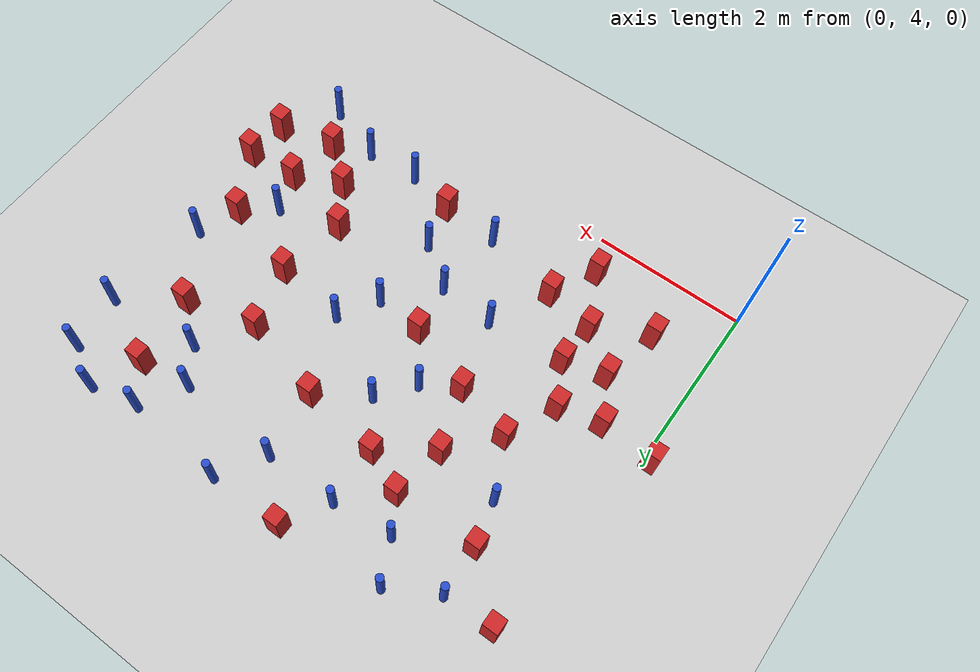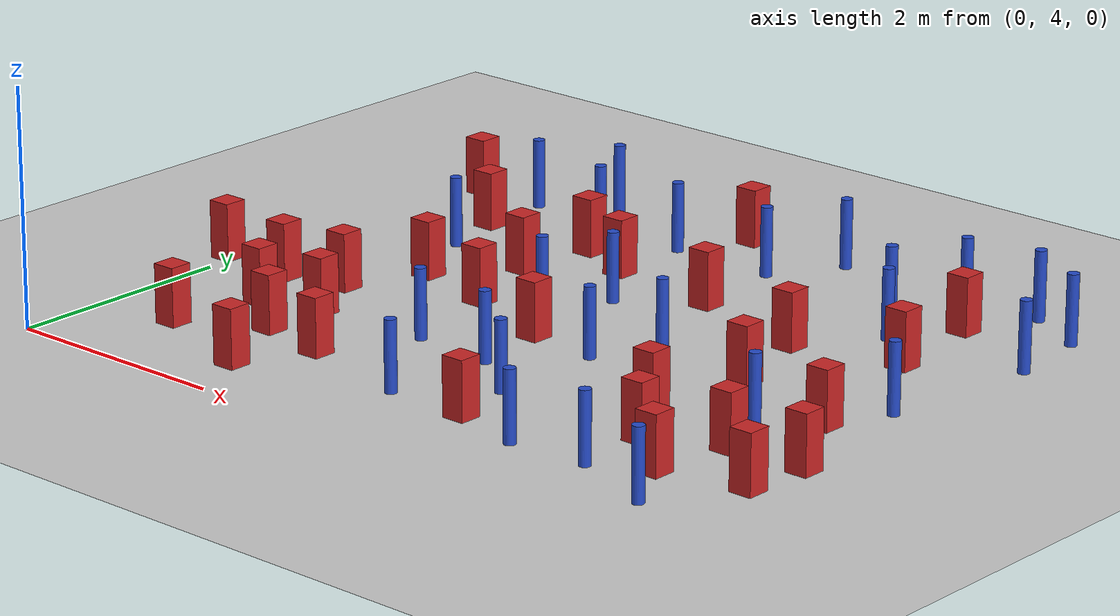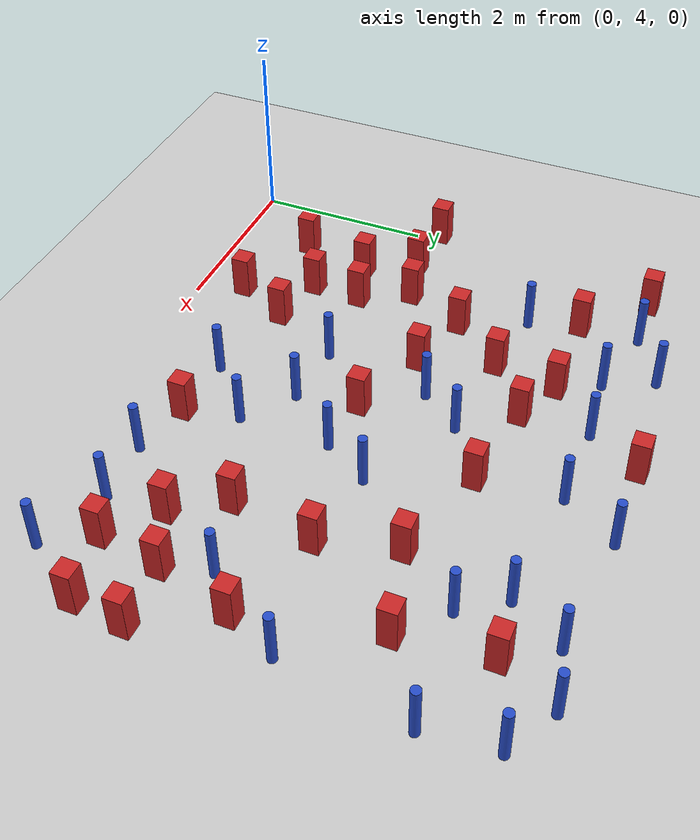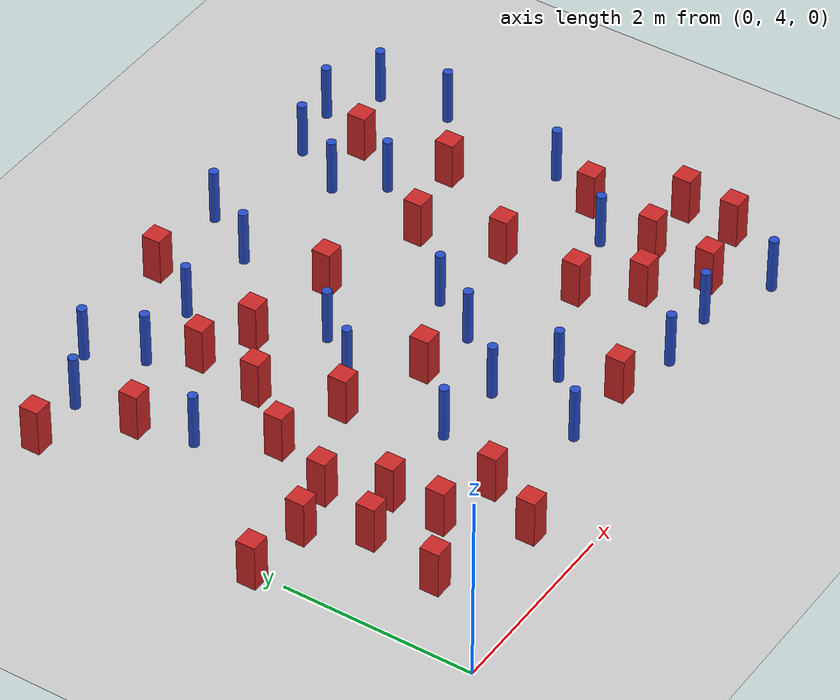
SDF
<sdf version="1.6">
 <world name="default">
  <model name="ground_plane">
   <static>1</static>
   <link name="link">
    <collision name="collision">
     <geometry><plane><normal>0 0 1</normal><size>100 100</size></plane></geometry>
     <surface><friction><ode><mu>100</mu><mu2>50</mu2></ode></friction></surface>
    </collision>
    <visual name="visual">
     <cast_shadows>0</cast_shadows>
     <geometry><plane><normal>0 0 1</normal><size>100 100</size></plane></geometry>
     <material>
      <ambient>1.0 1.0 1.0 1.0</ambient>
      <diffuse>0.8 0.8 0.8 1.0</diffuse>
      <specular>0.01 0.01 0.01 1.000000</specular>
     </material>
    </visual>
   </link>
  </model>
  <model name="pole_obstacle1">
   <static>true</static>
   <pose>5.22117834623 9.35934208849 -9.47619616065e-06 5.49618799737e-07 2.36310414065e-07 -1.55090534796e-07</pose>
   <link name="link">
    <pose>0 0 0.3 0 -0 0</pose>
    <inertial>
     <mass>1</mass>
     <inertia><ixx>0.145833</ixx><ixy>0</ixy><ixz>0</ixz><iyy>0.145833</iyy><iyz>0</iyz><izz>0.125</izz></inertia>
    </inertial>
    <collision name="collision">
     <geometry><cylinder><radius>0.05</radius><length>.6</length></cylinder></geometry>
    </collision>
    <visual name="visual">
     <geometry><cylinder><radius>0.05</radius><length>.6</length></cylinder></geometry>
     <material>
      <script><name>Gazebo/Blue</name><uri>file://media/materials/scripts/gazebo.material</uri></script>
     </material>
    </visual>
   </link>
  </model>
  <model name="square_post_obstacle22">
   <static>true</static>
   <pose>3.64120823474 8.00132083375 -6.11067671241e-07 -5.50515727128e-06 -8.79689657224e-07 2.37013304536e-05</pose>
   <link name="link">
    <pose>0 0 0.25 0 -0 0</pose>
    <inertial>
     <mass>100</mass>
     <inertia>
      <ixx>0.166667</ixx>
      <ixy>0</ixy>
      <ixz>0</ixz>
      <iyy>0.166667</iyy>
      <iyz>0</iyz>
      <izz>0.166667</izz>
     </inertia>
    </inertial>
    <collision name="collision"><geometry><box><size>.2 .2 .5</size></box></geometry></collision>
    <visual name="visual">
     <geometry><box><size>.2 .2 .5</size></box></geometry>
     <material>
      <script><name>Gazebo/Red</name><uri>file://media/materials/scripts/gazebo.material</uri></script>
     </material>
    </visual>
   </link>
  </model>
  <model name="pole_obstacle16">
   <static>true</static>
   <pose>4.05020937249 6.98445737278 -9.47619616065e-06 5.49618799737e-07 2.36310414037e-07 -1.55090534814e-07</pose>
   <link name="link">
    <pose>0 0 0.3 0 -0 0</pose>
    <inertial>
     <mass>1</mass>
     <inertia><ixx>0.145833</ixx><ixy>0</ixy><ixz>0</ixz><iyy>0.145833</iyy><iyz>0</iyz><izz>0.125</izz></inertia>
    </inertial>
    <collision name="collision">
     <geometry><cylinder><radius>0.05</radius><length>.6</length></cylinder></geometry>
    </collision>
    <visual name="visual">
     <geometry><cylinder><radius>0.05</radius><length>.6</length></cylinder></geometry>
     <material>
      <script><name>Gazebo/Blue</name><uri>file://media/materials/scripts/gazebo.material</uri></script>
     </material>
    </visual>
   </link>
  </model>
  <model name="square_post_obstacle23">
   <static>true</static>
   <pose>0.985947069019 8.33403981829 -6.11067671241e-07 -5.50515727128e-06 -8.79689657224e-07 2.37013304536e-05</pose>
   <link name="link">
    <pose>0 0 0.25 0 -0 0</pose>
    <inertial>
     <mass>100</mass>
     <inertia>
      <ixx>0.166667</ixx>
      <ixy>0</ixy>
      <ixz>0</ixz>
      <iyy>0.166667</iyy>
      <iyz>0</iyz>
      <izz>0.166667</izz>
     </inertia>
    </inertial>
    <collision name="collision"><geometry><box><size>.2 .2 .5</size></box></geometry></collision>
    <visual name="visual">
     <geometry><box><size>.2 .2 .5</size></box></geometry>
     <material>
      <script><name>Gazebo/Red</name><uri>file://media/materials/scripts/gazebo.material</uri></script>
     </material>
    </visual>
   </link>
  </model>
  <model name="square_post_obstacle28">
   <static>true</static>
   <pose>1.1737473469 6.38011214614 -6.11067671241e-07 -5.50515727128e-06 -8.79689657224e-07 2.37013304536e-05</pose>
   <link name="link">
    <pose>0 0 0.25 0 -0 0</pose>
    <inertial>
     <mass>100</mass>
     <inertia>
      <ixx>0.166667</ixx>
      <ixy>0</ixy>
      <ixz>0</ixz>
      <iyy>0.166667</iyy>
      <iyz>0</iyz>
      <izz>0.166667</izz>
     </inertia>
    </inertial>
    <collision name="collision"><geometry><box><size>.2 .2 .5</size></box></geometry></collision>
    <visual name="visual">
     <geometry><box><size>.2 .2 .5</size></box></geometry>
     <material>
      <script><name>Gazebo/Red</name><uri>file://media/materials/scripts/gazebo.material</uri></script>
     </material>
    </visual>
   </link>
  </model>
  <model name="pole_obstacle19">
   <static>true</static>
   <pose>5.20912425806 8.34923439376 -9.47619616065e-06 5.49618799737e-07 2.36310414065e-07 -1.55090534796e-07</pose>
   <link name="link">
    <pose>0 0 0.3 0 -0 0</pose>
    <inertial>
     <mass>1</mass>
     <inertia><ixx>0.145833</ixx><ixy>0</ixy><ixz>0</ixz><iyy>0.145833</iyy><iyz>0</iyz><izz>0.125</izz></inertia>
    </inertial>
    <collision name="collision">
     <geometry><cylinder><radius>0.05</radius><length>.6</length></cylinder></geometry>
    </collision>
    <visual name="visual">
     <geometry><cylinder><radius>0.05</radius><length>.6</length></cylinder></geometry>
     <material>
      <script><name>Gazebo/Blue</name><uri>file://media/materials/scripts/gazebo.material</uri></script>
     </material>
    </visual>
   </link>
  </model>
  <model name="square_post_obstacle29">
   <static>true</static>
   <pose>3.10308174063 6.5389004977 -6.11067671241e-07 -5.50515727128e-06 -8.79689657224e-07 2.37013304536e-05</pose>
   <link name="link">
    <pose>0 0 0.25 0 -0 0</pose>
    <inertial>
     <mass>100</mass>
     <inertia>
      <ixx>0.166667</ixx>
      <ixy>0</ixy>
      <ixz>0</ixz>
      <iyy>0.166667</iyy>
      <iyz>0</iyz>
      <izz>0.166667</izz>
     </inertia>
    </inertial>
    <collision name="collision"><geometry><box><size>.2 .2 .5</size></box></geometry></collision>
    <visual name="visual">
     <geometry><box><size>.2 .2 .5</size></box></geometry>
     <material>
      <script><name>Gazebo/Red</name><uri>file://media/materials/scripts/gazebo.material</uri></script>
     </material>
    </visual>
   </link>
  </model>
  <model name="square_post_obstacle32">
   <static>true</static>
   <pose>4.7478734859 7.69676455228 -6.11067671241e-07 -5.50515727128e-06 -8.79689657224e-07 2.37013304536e-05</pose>
   <link name="link">
    <pose>0 0 0.25 0 -0 0</pose>
    <inertial>
     <mass>100</mass>
     <inertia>
      <ixx>0.166667</ixx>
      <ixy>0</ixy>
      <ixz>0</ixz>
      <iyy>0.166667</iyy>
      <iyz>0</iyz>
      <izz>0.166667</izz>
     </inertia>
    </inertial>
    <collision name="collision"><geometry><box><size>.2 .2 .5</size></box></geometry></collision>
    <visual name="visual">
     <geometry><box><size>.2 .2 .5</size></box></geometry>
     <material>
      <script><name>Gazebo/Red</name><uri>file://media/materials/scripts/gazebo.material</uri></script>
     </material>
    </visual>
   </link>
  </model>
  <model name="pole_obstacle29">
   <static>true</static>
   <pose>1.55972609827 9.33572097061 -9.47619616065e-06 5.49618799737e-07 2.36310414046e-07 -1.55090534809e-07</pose>
   <link name="link">
    <pose>0 0 0.3 0 -0 0</pose>
    <inertial>
     <mass>1</mass>
     <inertia><ixx>0.145833</ixx><ixy>0</ixy><ixz>0</ixz><iyy>0.145833</iyy><iyz>0</iyz><izz>0.125</izz></inertia>
    </inertial>
    <collision name="collision">
     <geometry><cylinder><radius>0.05</radius><length>.6</length></cylinder></geometry>
    </collision>
    <visual name="visual">
     <geometry><cylinder><radius>0.05</radius><length>.6</length></cylinder></geometry>
     <material>
      <script><name>Gazebo/Blue</name><uri>file://media/materials/scripts/gazebo.material</uri></script>
     </material>
    </visual>
   </link>
  </model>
  <model name="pole_obstacle33">
   <static>true</static>
   <pose>3.11522499786 4.90330845976 -9.47619616065e-06 5.49618799738e-07 2.3631041406e-07 -1.55090534801e-07</pose>
   <link name="link">
    <pose>0 0 0.3 0 -0 0</pose>
    <inertial>
     <mass>1</mass>
     <inertia><ixx>0.145833</ixx><ixy>0</ixy><ixz>0</ixz><iyy>0.145833</iyy><iyz>0</iyz><izz>0.125</izz></inertia>
    </inertial>
    <collision name="collision">
     <geometry><cylinder><radius>0.05</radius><length>.6</length></cylinder></geometry>
    </collision>
    <visual name="visual">
     <geometry><cylinder><radius>0.05</radius><length>.6</length></cylinder></geometry>
     <material>
      <script><name>Gazebo/Blue</name><uri>file://media/materials/scripts/gazebo.material</uri></script>
     </material>
    </visual>
   </link>
  </model>
  <model name="square_post_obstacle39">
   <static>true</static>
   <pose>2.08416716414 5.13450118915 -6.11067671241e-07 -5.50515727128e-06 -8.79689657224e-07 2.37013304536e-05</pose>
   <link name="link">
    <pose>0 0 0.25 0 -0 0</pose>
    <inertial>
     <mass>100</mass>
     <inertia>
      <ixx>0.166667</ixx>
      <ixy>0</ixy>
      <ixz>0</ixz>
      <iyy>0.166667</iyy>
      <iyz>0</iyz>
      <izz>0.166667</izz>
     </inertia>
    </inertial>
    <collision name="collision"><geometry><box><size>.2 .2 .5</size></box></geometry></collision>
    <visual name="visual">
     <geometry><box><size>.2 .2 .5</size></box></geometry>
     <material>
      <script><name>Gazebo/Red</name><uri>file://media/materials/scripts/gazebo.material</uri></script>
     </material>
    </visual>
   </link>
  </model>
  <model name="square_post_obstacle40">
   <static>true</static>
   <pose>2.22284791505 6.8596270205 -6.11067671241e-07 -5.50515727128e-06 -8.79689657224e-07 2.37013304536e-05</pose>
   <link name="link">
    <pose>0 0 0.25 0 -0 0</pose>
    <inertial>
     <mass>100</mass>
     <inertia>
      <ixx>0.166667</ixx>
      <ixy>0</ixy>
      <ixz>0</ixz>
      <iyy>0.166667</iyy>
      <iyz>0</iyz>
      <izz>0.166667</izz>
     </inertia>
    </inertial>
    <collision name="collision"><geometry><box><size>.2 .2 .5</size></box></geometry></collision>
    <visual name="visual">
     <geometry><box><size>.2 .2 .5</size></box></geometry>
     <material>
      <script><name>Gazebo/Red</name><uri>file://media/materials/scripts/gazebo.material</uri></script>
     </material>
    </visual>
   </link>
  </model>
  <model name="square_post_obstacle42">
   <static>true</static>
   <pose>6.46912586105 5.73541820475 -6.11067671241e-07 -5.50515727128e-06 -8.79689657224e-07 2.37013304536e-05</pose>
   <link name="link">
    <pose>0 0 0.25 0 -0 0</pose>
    <inertial>
     <mass>100</mass>
     <inertia>
      <ixx>0.166667</ixx>
      <ixy>0</ixy>
      <ixz>0</ixz>
      <iyy>0.166667</iyy>
      <iyz>0</iyz>
      <izz>0.166667</izz>
     </inertia>
    </inertial>
    <collision name="collision"><geometry><box><size>.2 .2 .5</size></box></geometry></collision>
    <visual name="visual">
     <geometry><box><size>.2 .2 .5</size></box></geometry>
     <material>
      <script><name>Gazebo/Red</name><uri>file://media/materials/scripts/gazebo.material</uri></script>
     </material>
    </visual>
   </link>
  </model>
  <model name="pole_obstacle48">
   <static>true</static>
   <pose>2.47264518515 5.91172546677 -9.47619616065e-06 5.49618799738e-07 2.3631041406e-07 -1.55090534801e-07</pose>
   <link name="link">
    <pose>0 0 0.3 0 -0 0</pose>
    <inertial>
     <mass>1</mass>
     <inertia><ixx>0.145833</ixx><ixy>0</ixy><ixz>0</ixz><iyy>0.145833</iyy><iyz>0</iyz><izz>0.125</izz></inertia>
    </inertial>
    <collision name="collision">
     <geometry><cylinder><radius>0.05</radius><length>.6</length></cylinder></geometry>
    </collision>
    <visual name="visual">
     <geometry><cylinder><radius>0.05</radius><length>.6</length></cylinder></geometry>
     <material>
      <script><name>Gazebo/Blue</name><uri>file://media/materials/scripts/gazebo.material</uri></script>
     </material>
    </visual>
   </link>
  </model>
  <model name="square_post_obstacle49">
   <static>true</static>
   <pose>4.97566163913 6.8706727626 -6.11067671241e-07 -5.50515727128e-06 -8.79689657224e-07 2.37013304536e-05</pose>
   <link name="link">
    <pose>0 0 0.25 0 -0 0</pose>
    <inertial>
     <mass>100</mass>
     <inertia>
      <ixx>0.166667</ixx>
      <ixy>0</ixy>
      <ixz>0</ixz>
      <iyy>0.166667</iyy>
      <iyz>0</iyz>
      <izz>0.166667</izz>
     </inertia>
    </inertial>
    <collision name="collision"><geometry><box><size>.2 .2 .5</size></box></geometry></collision>
    <visual name="visual">
     <geometry><box><size>.2 .2 .5</size></box></geometry>
     <material>
      <script><name>Gazebo/Red</name><uri>file://media/materials/scripts/gazebo.material</uri></script>
     </material>
    </visual>
   </link>
  </model>
  <model name="square_post_obstacle53">
   <static>true</static>
   <pose>5.67187086795 4.99819045054 -6.11067671241e-07 -5.50515727128e-06 -8.79689657224e-07 2.37013304536e-05</pose>
   <link name="link">
    <pose>0 0 0.25 0 -0 0</pose>
    <inertial>
     <mass>100</mass>
     <inertia>
      <ixx>0.166667</ixx>
      <ixy>0</ixy>
      <ixz>0</ixz>
      <iyy>0.166667</iyy>
      <iyz>0</iyz>
      <izz>0.166667</izz>
     </inertia>
    </inertial>
    <collision name="collision"><geometry><box><size>.2 .2 .5</size></box></geometry></collision>
    <visual name="visual">
     <geometry><box><size>.2 .2 .5</size></box></geometry>
     <material>
      <script><name>Gazebo/Red</name><uri>file://media/materials/scripts/gazebo.material</uri></script>
     </material>
    </visual>
   </link>
  </model>
  <model name="pole_obstacle57">
   <static>true</static>
   <pose>2.59308201413 8.8866896529 -9.4761961606e-06 5.49618799729e-07 2.36310414e-07 -1.55090534824e-07</pose>
   <link name="link">
    <pose>0 0 0.3 0 -0 0</pose>
    <inertial>
     <mass>1</mass>
     <inertia><ixx>0.145833</ixx><ixy>0</ixy><ixz>0</ixz><iyy>0.145833</iyy><iyz>0</iyz><izz>0.125</izz></inertia>
    </inertial>
    <collision name="collision">
     <geometry><cylinder><radius>0.05</radius><length>.6</length></cylinder></geometry>
    </collision>
    <visual name="visual">
     <geometry><cylinder><radius>0.05</radius><length>.6</length></cylinder></geometry>
     <material>
      <script><name>Gazebo/Blue</name><uri>file://media/materials/scripts/gazebo.material</uri></script>
     </material>
    </visual>
   </link>
  </model>
  <model name="square_post_obstacle64">
   <static>true</static>
   <pose>0.747100064259 4.87869101274 -6.11067671241e-07 -5.50515727128e-06 -8.79689657224e-07 2.37013304536e-05</pose>
   <link name="link">
    <pose>0 0 0.25 0 -0 0</pose>
    <inertial>
     <mass>100</mass>
     <inertia>
      <ixx>0.166667</ixx>
      <ixy>0</ixy>
      <ixz>0</ixz>
      <iyy>0.166667</iyy>
      <iyz>0</iyz>
      <izz>0.166667</izz>
     </inertia>
    </inertial>
    <collision name="collision"><geometry><box><size>.2 .2 .5</size></box></geometry></collision>
    <visual name="visual">
     <geometry><box><size>.2 .2 .5</size></box></geometry>
     <material>
      <script><name>Gazebo/Red</name><uri>file://media/materials/scripts/gazebo.material</uri></script>
     </material>
    </visual>
   </link>
  </model>
  <model name="square_post_obstacle68">
   <static>true</static>
   <pose>2.92671249642 9.46165111461 -6.11067671241e-07 -5.50515727128e-06 -8.79689657224e-07 2.37013304536e-05</pose>
   <link name="link">
    <pose>0 0 0.25 0 -0 0</pose>
    <inertial>
     <mass>100</mass>
     <inertia>
      <ixx>0.166667</ixx>
      <ixy>0</ixy>
      <ixz>0</ixz>
      <iyy>0.166667</iyy>
      <iyz>0</iyz>
      <izz>0.166667</izz>
     </inertia>
    </inertial>
    <collision name="collision"><geometry><box><size>.2 .2 .5</size></box></geometry></collision>
    <visual name="visual">
     <geometry><box><size>.2 .2 .5</size></box></geometry>
     <material>
      <script><name>Gazebo/Red</name><uri>file://media/materials/scripts/gazebo.material</uri></script>
     </material>
    </visual>
   </link>
  </model>
  <model name="pole_obstacle69">
   <static>true</static>
   <pose>2.67313266446 7.11828886367 -9.47619616065e-06 5.49618799738e-07 2.3631041406e-07 -1.55090534801e-07</pose>
   <link name="link">
    <pose>0 0 0.3 0 -0 0</pose>
    <inertial>
     <mass>1</mass>
     <inertia><ixx>0.145833</ixx><ixy>0</ixy><ixz>0</ixz><iyy>0.145833</iyy><iyz>0</iyz><izz>0.125</izz></inertia>
    </inertial>
    <collision name="collision">
     <geometry><cylinder><radius>0.05</radius><length>.6</length></cylinder></geometry>
    </collision>
    <visual name="visual">
     <geometry><cylinder><radius>0.05</radius><length>.6</length></cylinder></geometry>
     <material>
      <script><name>Gazebo/Blue</name><uri>file://media/materials/scripts/gazebo.material</uri></script>
     </material>
    </visual>
   </link>
  </model>
  <model name="pole_obstacle71">
   <static>true</static>
   <pose>5.20582253935 4.76449279954 -9.47619616065e-06 5.49618799737e-07 2.36310414037e-07 -1.55090534814e-07</pose>
   <link name="link">
    <pose>0 0 0.3 0 -0 0</pose>
    <inertial>
     <mass>1</mass>
     <inertia><ixx>0.145833</ixx><ixy>0</ixy><ixz>0</ixz><iyy>0.145833</iyy><iyz>0</iyz><izz>0.125</izz></inertia>
    </inertial>
    <collision name="collision">
     <geometry><cylinder><radius>0.05</radius><length>.6</length></cylinder></geometry>
    </collision>
    <visual name="visual">
     <geometry><cylinder><radius>0.05</radius><length>.6</length></cylinder></geometry>
     <material>
      <script><name>Gazebo/Blue</name><uri>file://media/materials/scripts/gazebo.material</uri></script>
     </material>
    </visual>
   </link>
  </model>
  <model name="pole_obstacle80">
   <static>true</static>
   <pose>5.84119966735 9.495412137 -9.47619616065e-06 5.49618799737e-07 2.36310414065e-07 -1.55090534796e-07</pose>
   <link name="link">
    <pose>0 0 0.3 0 -0 0</pose>
    <inertial>
     <mass>1</mass>
     <inertia><ixx>0.145833</ixx><ixy>0</ixy><ixz>0</ixz><iyy>0.145833</iyy><iyz>0</iyz><izz>0.125</izz></inertia>
    </inertial>
    <collision name="collision">
     <geometry><cylinder><radius>0.05</radius><length>.6</length></cylinder></geometry>
    </collision>
    <visual name="visual">
     <geometry><cylinder><radius>0.05</radius><length>.6</length></cylinder></geometry>
     <material>
      <script><name>Gazebo/Blue</name><uri>file://media/materials/scripts/gazebo.material</uri></script>
     </material>
    </visual>
   </link>
  </model>
  <model name="square_post_obstacle82">
   <static>true</static>
   <pose>0.315583821792 8.96441694049 -6.11067671241e-07 -5.50515727128e-06 -8.79689657224e-07 2.37013304536e-05</pose>
   <link name="link">
    <pose>0 0 0.25 0 -0 0</pose>
    <inertial>
     <mass>100</mass>
     <inertia>
      <ixx>0.166667</ixx>
      <ixy>0</ixy>
      <ixz>0</ixz>
      <iyy>0.166667</iyy>
      <iyz>0</iyz>
      <izz>0.166667</izz>
     </inertia>
    </inertial>
    <collision name="collision"><geometry><box><size>.2 .2 .5</size></box></geometry></collision>
    <visual name="visual">
     <geometry><box><size>.2 .2 .5</size></box></geometry>
     <material>
      <script><name>Gazebo/Red</name><uri>file://media/materials/scripts/gazebo.material</uri></script>
     </material>
    </visual>
   </link>
  </model>
  <model name="square_post_obstacle86">
   <static>true</static>
   <pose>1.43545697192 5.26880449356 -6.11067671241e-07 -5.50515727128e-06 -8.79689657224e-07 2.37013304536e-05</pose>
   <link name="link">
    <pose>0 0 0.25 0 -0 0</pose>
    <inertial>
     <mass>100</mass>
     <inertia>
      <ixx>0.166667</ixx>
      <ixy>0</ixy>
      <ixz>0</ixz>
      <iyy>0.166667</iyy>
      <iyz>0</iyz>
      <izz>0.166667</izz>
     </inertia>
    </inertial>
    <collision name="collision"><geometry><box><size>.2 .2 .5</size></box></geometry></collision>
    <visual name="visual">
     <geometry><box><size>.2 .2 .5</size></box></geometry>
     <material>
      <script><name>Gazebo/Red</name><uri>file://media/materials/scripts/gazebo.material</uri></script>
     </material>
    </visual>
   </link>
  </model>
  <model name="pole_obstacle99">
   <static>true</static>
   <pose>3.20936606294 5.85970837251 -9.47619616065e-06 5.49618799738e-07 2.3631041406e-07 -1.55090534801e-07</pose>
   <link name="link">
    <pose>0 0 0.3 0 -0 0</pose>
    <inertial>
     <mass>1</mass>
     <inertia><ixx>0.145833</ixx><ixy>0</ixy><ixz>0</ixz><iyy>0.145833</iyy><iyz>0</iyz><izz>0.125</izz></inertia>
    </inertial>
    <collision name="collision">
     <geometry><cylinder><radius>0.05</radius><length>.6</length></cylinder></geometry>
    </collision>
    <visual name="visual">
     <geometry><cylinder><radius>0.05</radius><length>.6</length></cylinder></geometry>
     <material>
      <script><name>Gazebo/Blue</name><uri>file://media/materials/scripts/gazebo.material</uri></script>
     </material>
    </visual>
   </link>
  </model>
  <model name="square_post_obstacle93">
   <static>true</static>
   <pose>5.17223831811 5.41815176642 -6.11067671241e-07 -5.50515727128e-06 -8.79689657224e-07 2.37013304536e-05</pose>
   <link name="link">
    <pose>0 0 0.25 0 -0 0</pose>
    <inertial>
     <mass>100</mass>
     <inertia>
      <ixx>0.166667</ixx>
      <ixy>0</ixy>
      <ixz>0</ixz>
      <iyy>0.166667</iyy>
      <iyz>0</iyz>
      <izz>0.166667</izz>
     </inertia>
    </inertial>
    <collision name="collision"><geometry><box><size>.2 .2 .5</size></box></geometry></collision>
    <visual name="visual">
     <geometry><box><size>.2 .2 .5</size></box></geometry>
     <material>
      <script><name>Gazebo/Red</name><uri>file://media/materials/scripts/gazebo.material</uri></script>
     </material>
    </visual>
   </link>
  </model>
  <model name="pole_obstacle108">
   <static>true</static>
   <pose>4.89678884292 8.79325300489 -9.47619616065e-06 5.49618799737e-07 2.36310414065e-07 -1.55090534796e-07</pose>
   <link name="link">
    <pose>0 0 0.3 0 -0 0</pose>
    <inertial>
     <mass>1</mass>
     <inertia><ixx>0.145833</ixx><ixy>0</ixy><ixz>0</ixz><iyy>0.145833</iyy><iyz>0</iyz><izz>0.125</izz></inertia>
    </inertial>
    <collision name="collision">
     <geometry><cylinder><radius>0.05</radius><length>.6</length></cylinder></geometry>
    </collision>
    <visual name="visual">
     <geometry><cylinder><radius>0.05</radius><length>.6</length></cylinder></geometry>
     <material>
      <script><name>Gazebo/Blue</name><uri>file://media/materials/scripts/gazebo.material</uri></script>
     </material>
    </visual>
   </link>
  </model>
  <model name="pole_obstacle109">
   <static>true</static>
   <pose>4.5065976221 4.71936565722 -9.47619616065e-06 5.49618799737e-07 2.36310414037e-07 -1.55090534814e-07</pose>
   <link name="link">
    <pose>0 0 0.3 0 -0 0</pose>
    <inertial>
     <mass>1</mass>
     <inertia><ixx>0.145833</ixx><ixy>0</ixy><ixz>0</ixz><iyy>0.145833</iyy><iyz>0</iyz><izz>0.125</izz></inertia>
    </inertial>
    <collision name="collision">
     <geometry><cylinder><radius>0.05</radius><length>.6</length></cylinder></geometry>
    </collision>
    <visual name="visual">
     <geometry><cylinder><radius>0.05</radius><length>.6</length></cylinder></geometry>
     <material>
      <script><name>Gazebo/Blue</name><uri>file://media/materials/scripts/gazebo.material</uri></script>
     </material>
    </visual>
   </link>
  </model>
  <model name="pole_obstacle112">
   <static>true</static>
   <pose>1.81482619074 8.80245391058 -9.47619616065e-06 5.49618799737e-07 2.36310414046e-07 -1.55090534809e-07</pose>
   <link name="link">
    <pose>0 0 0.3 0 -0 0</pose>
    <inertial>
     <mass>1</mass>
     <inertia><ixx>0.145833</ixx><ixy>0</ixy><ixz>0</ixz><iyy>0.145833</iyy><iyz>0</iyz><izz>0.125</izz></inertia>
    </inertial>
    <collision name="collision">
     <geometry><cylinder><radius>0.05</radius><length>.6</length></cylinder></geometry>
    </collision>
    <visual name="visual">
     <geometry><cylinder><radius>0.05</radius><length>.6</length></cylinder></geometry>
     <material>
      <script><name>Gazebo/Blue</name><uri>file://media/materials/scripts/gazebo.material</uri></script>
     </material>
    </visual>
   </link>
  </model>
  <model name="square_post_obstacle103">
   <static>true</static>
   <pose>4.82099652088 5.95417915032 -6.11067671241e-07 -5.50515727128e-06 -8.79689657224e-07 2.37013304536e-05</pose>
   <link name="link">
    <pose>0 0 0.25 0 -0 0</pose>
    <inertial>
     <mass>100</mass>
     <inertia>
      <ixx>0.166667</ixx>
      <ixy>0</ixy>
      <ixz>0</ixz>
      <iyy>0.166667</iyy>
      <iyz>0</iyz>
      <izz>0.166667</izz>
     </inertia>
    </inertial>
    <collision name="collision"><geometry><box><size>.2 .2 .5</size></box></geometry></collision>
    <visual name="visual">
     <geometry><box><size>.2 .2 .5</size></box></geometry>
     <material>
      <script><name>Gazebo/Red</name><uri>file://media/materials/scripts/gazebo.material</uri></script>
     </material>
    </visual>
   </link>
  </model>
  <model name="pole_obstacle119">
   <static>true</static>
   <pose>3.02274021965 7.57544836482 -9.47619616065e-06 5.49618799738e-07 2.3631041406e-07 -1.55090534801e-07</pose>
   <link name="link">
    <pose>0 0 0.3 0 -0 0</pose>
    <inertial>
     <mass>1</mass>
     <inertia><ixx>0.145833</ixx><ixy>0</ixy><ixz>0</ixz><iyy>0.145833</iyy><iyz>0</iyz><izz>0.125</izz></inertia>
    </inertial>
    <collision name="collision">
     <geometry><cylinder><radius>0.05</radius><length>.6</length></cylinder></geometry>
    </collision>
    <visual name="visual">
     <geometry><cylinder><radius>0.05</radius><length>.6</length></cylinder></geometry>
     <material>
      <script><name>Gazebo/Blue</name><uri>file://media/materials/scripts/gazebo.material</uri></script>
     </material>
    </visual>
   </link>
  </model>
  <model name="square_post_obstacle108">
   <static>true</static>
   <pose>5.55207386967 8.88534764283 -6.11067671241e-07 -5.50515727128e-06 -8.79689657224e-07 2.37013304536e-05</pose>
   <link name="link">
    <pose>0 0 0.25 0 -0 0</pose>
    <inertial>
     <mass>100</mass>
     <inertia>
      <ixx>0.166667</ixx>
      <ixy>0</ixy>
      <ixz>0</ixz>
      <iyy>0.166667</iyy>
      <iyz>0</iyz>
      <izz>0.166667</izz>
     </inertia>
    </inertial>
    <collision name="collision"><geometry><box><size>.2 .2 .5</size></box></geometry></collision>
    <visual name="visual">
     <geometry><box><size>.2 .2 .5</size></box></geometry>
     <material>
      <script><name>Gazebo/Red</name><uri>file://media/materials/scripts/gazebo.material</uri></script>
     </material>
    </visual>
   </link>
  </model>
  <model name="square_post_obstacle112">
   <static>true</static>
   <pose>6.02109471447 6.53833663316 -6.11067671241e-07 -5.50515727128e-06 -8.79689657224e-07 2.37013304536e-05</pose>
   <link name="link">
    <pose>0 0 0.25 0 -0 0</pose>
    <inertial>
     <mass>100</mass>
     <inertia>
      <ixx>0.166667</ixx>
      <ixy>0</ixy>
      <ixz>0</ixz>
      <iyy>0.166667</iyy>
      <iyz>0</iyz>
      <izz>0.166667</izz>
     </inertia>
    </inertial>
    <collision name="collision"><geometry><box><size>.2 .2 .5</size></box></geometry></collision>
    <visual name="visual">
     <geometry><box><size>.2 .2 .5</size></box></geometry>
     <material>
      <script><name>Gazebo/Red</name><uri>file://media/materials/scripts/gazebo.material</uri></script>
     </material>
    </visual>
   </link>
  </model>
  <model name="pole_obstacle135">
   <static>true</static>
   <pose>3.7453509983 6.47419791487 -9.47619616065e-06 5.49618799738e-07 2.3631041406e-07 -1.55090534801e-07</pose>
   <link name="link">
    <pose>0 0 0.3 0 -0 0</pose>
    <inertial>
     <mass>1</mass>
     <inertia><ixx>0.145833</ixx><ixy>0</ixy><ixz>0</ixz><iyy>0.145833</iyy><iyz>0</iyz><izz>0.125</izz></inertia>
    </inertial>
    <collision name="collision">
     <geometry><cylinder><radius>0.05</radius><length>.6</length></cylinder></geometry>
    </collision>
    <visual name="visual">
     <geometry><cylinder><radius>0.05</radius><length>.6</length></cylinder></geometry>
     <material>
      <script><name>Gazebo/Blue</name><uri>file://media/materials/scripts/gazebo.material</uri></script>
     </material>
    </visual>
   </link>
  </model>
  <model name="pole_obstacle139">
   <static>true</static>
   <pose>0.949584824789 8.98993158953 -9.47619616065e-06 5.49618799737e-07 2.36310414038e-07 -1.55090534813e-07</pose>
   <link name="link">
    <pose>0 0 0.3 0 -0 0</pose>
    <inertial>
     <mass>1</mass>
     <inertia><ixx>0.145833</ixx><ixy>0</ixy><ixz>0</ixz><iyy>0.145833</iyy><iyz>0</iyz><izz>0.125</izz></inertia>
    </inertial>
    <collision name="collision">
     <geometry><cylinder><radius>0.05</radius><length>.6</length></cylinder></geometry>
    </collision>
    <visual name="visual">
     <geometry><cylinder><radius>0.05</radius><length>.6</length></cylinder></geometry>
     <material>
      <script><name>Gazebo/Blue</name><uri>file://media/materials/scripts/gazebo.material</uri></script>
     </material>
    </visual>
   </link>
  </model>
  <model name="square_post_obstacle135">
   <static>true</static>
   <pose>3.86820466184 4.88035937348 -6.11067671241e-07 -5.50515727128e-06 -8.79689657224e-07 2.37013304536e-05</pose>
   <link name="link">
    <pose>0 0 0.25 0 -0 0</pose>
    <inertial>
     <mass>100</mass>
     <inertia>
      <ixx>0.166667</ixx>
      <ixy>0</ixy>
      <ixz>0</ixz>
      <iyy>0.166667</iyy>
      <iyz>0</iyz>
      <izz>0.166667</izz>
     </inertia>
    </inertial>
    <collision name="collision"><geometry><box><size>.2 .2 .5</size></box></geometry></collision>
    <visual name="visual">
     <geometry><box><size>.2 .2 .5</size></box></geometry>
     <material>
      <script><name>Gazebo/Red</name><uri>file://media/materials/scripts/gazebo.material</uri></script>
     </material>
    </visual>
   </link>
  </model>
  <model name="pole_obstacle153">
   <static>true</static>
   <pose>3.73742063756 5.46314344186 -9.47619616065e-06 5.49618799738e-07 2.3631041406e-07 -1.55090534801e-07</pose>
   <link name="link">
    <pose>0 0 0.3 0 -0 0</pose>
    <inertial>
     <mass>1</mass>
     <inertia><ixx>0.145833</ixx><ixy>0</ixy><ixz>0</ixz><iyy>0.145833</iyy><iyz>0</iyz><izz>0.125</izz></inertia>
    </inertial>
    <collision name="collision">
     <geometry><cylinder><radius>0.05</radius><length>.6</length></cylinder></geometry>
    </collision>
    <visual name="visual">
     <geometry><cylinder><radius>0.05</radius><length>.6</length></cylinder></geometry>
     <material>
      <script><name>Gazebo/Blue</name><uri>file://media/materials/scripts/gazebo.material</uri></script>
     </material>
    </visual>
   </link>
  </model>
  <model name="square_post_obstacle145">
   <static>true</static>
   <pose>5.78949252292 5.70082799483 -6.11067671241e-07 -5.50515727128e-06 -8.79689657224e-07 2.37013304536e-05</pose>
   <link name="link">
    <pose>0 0 0.25 0 -0 0</pose>
    <inertial>
     <mass>100</mass>
     <inertia>
      <ixx>0.166667</ixx>
      <ixy>0</ixy>
      <ixz>0</ixz>
      <iyy>0.166667</iyy>
      <iyz>0</iyz>
      <izz>0.166667</izz>
     </inertia>
    </inertial>
    <collision name="collision"><geometry><box><size>.2 .2 .5</size></box></geometry></collision>
    <visual name="visual">
     <geometry><box><size>.2 .2 .5</size></box></geometry>
     <material>
      <script><name>Gazebo/Red</name><uri>file://media/materials/scripts/gazebo.material</uri></script>
     </material>
    </visual>
   </link>
  </model>
  <model name="pole_obstacle156">
   <static>true</static>
   <pose>6.44865231741 8.4632924182 -9.47619616065e-06 5.49618799737e-07 2.36310414065e-07 -1.55090534796e-07</pose>
   <link name="link">
    <pose>0 0 0.3 0 -0 0</pose>
    <inertial>
     <mass>1</mass>
     <inertia><ixx>0.145833</ixx><ixy>0</ixy><ixz>0</ixz><iyy>0.145833</iyy><iyz>0</iyz><izz>0.125</izz></inertia>
    </inertial>
    <collision name="collision">
     <geometry><cylinder><radius>0.05</radius><length>.6</length></cylinder></geometry>
    </collision>
    <visual name="visual">
     <geometry><cylinder><radius>0.05</radius><length>.6</length></cylinder></geometry>
     <material>
      <script><name>Gazebo/Blue</name><uri>file://media/materials/scripts/gazebo.material</uri></script>
     </material>
    </visual>
   </link>
  </model>
  <model name="square_post_obstacle151">
   <static>true</static>
   <pose>-0.0775468507301 6.28440864882 -6.11067671241e-07 -5.50515727128e-06 -8.79689657224e-07 2.37013304536e-05</pose>
   <link name="link">
    <pose>0 0 0.25 0 -0 0</pose>
    <inertial>
     <mass>100</mass>
     <inertia>
      <ixx>0.166667</ixx>
      <ixy>0</ixy>
      <ixz>0</ixz>
      <iyy>0.166667</iyy>
      <iyz>0</iyz>
      <izz>0.166667</izz>
     </inertia>
    </inertial>
    <collision name="collision"><geometry><box><size>.2 .2 .5</size></box></geometry></collision>
    <visual name="visual">
     <geometry><box><size>.2 .2 .5</size></box></geometry>
     <material>
      <script><name>Gazebo/Red</name><uri>file://media/materials/scripts/gazebo.material</uri></script>
     </material>
    </visual>
   </link>
  </model>
  <model name="pole_obstacle158">
   <static>true</static>
   <pose>3.53844291047 8.88839485869 -9.4761961606e-06 5.49618799729e-07 2.36310414e-07 -1.55090534824e-07</pose>
   <link name="link">
    <pose>0 0 0.3 0 -0 0</pose>
    <inertial>
     <mass>1</mass>
     <inertia><ixx>0.145833</ixx><ixy>0</ixy><ixz>0</ixz><iyy>0.145833</iyy><iyz>0</iyz><izz>0.125</izz></inertia>
    </inertial>
    <collision name="collision">
     <geometry><cylinder><radius>0.05</radius><length>.6</length></cylinder></geometry>
    </collision>
    <visual name="visual">
     <geometry><cylinder><radius>0.05</radius><length>.6</length></cylinder></geometry>
     <material>
      <script><name>Gazebo/Blue</name><uri>file://media/materials/scripts/gazebo.material</uri></script>
     </material>
    </visual>
   </link>
  </model>
  <model name="pole_obstacle162">
   <static>true</static>
   <pose>3.89796685885 9.48286944888 -9.4761961606e-06 5.49618799729e-07 2.36310414e-07 -1.55090534824e-07</pose>
   <link name="link">
    <pose>0 0 0.3 0 -0 0</pose>
    <inertial>
     <mass>1</mass>
     <inertia><ixx>0.145833</ixx><ixy>0</ixy><ixz>0</ixz><iyy>0.145833</iyy><iyz>0</iyz><izz>0.125</izz></inertia>
    </inertial>
    <collision name="collision">
     <geometry><cylinder><radius>0.05</radius><length>.6</length></cylinder></geometry>
    </collision>
    <visual name="visual">
     <geometry><cylinder><radius>0.05</radius><length>.6</length></cylinder></geometry>
     <material>
      <script><name>Gazebo/Blue</name><uri>file://media/materials/scripts/gazebo.material</uri></script>
     </material>
    </visual>
   </link>
  </model>
  <model name="square_post_obstacle162">
   <static>true</static>
   <pose>5.67264462744 7.93923367593 -6.11067671241e-07 -5.50515727128e-06 -8.79689657224e-07 2.37013304536e-05</pose>
   <link name="link">
    <pose>0 0 0.25 0 -0 0</pose>
    <inertial>
     <mass>100</mass>
     <inertia>
      <ixx>0.166667</ixx>
      <ixy>0</ixy>
      <ixz>0</ixz>
      <iyy>0.166667</iyy>
      <iyz>0</iyz>
      <izz>0.166667</izz>
     </inertia>
    </inertial>
    <collision name="collision"><geometry><box><size>.2 .2 .5</size></box></geometry></collision>
    <visual name="visual">
     <geometry><box><size>.2 .2 .5</size></box></geometry>
     <material>
      <script><name>Gazebo/Red</name><uri>file://media/materials/scripts/gazebo.material</uri></script>
     </material>
    </visual>
   </link>
  </model>
  <model name="square_post_obstacle164">
   <static>true</static>
   <pose>2.61109598773 8.13556844679 -6.11067671241e-07 -5.50515727128e-06 -8.79689657224e-07 2.37013304536e-05</pose>
   <link name="link">
    <pose>0 0 0.25 0 -0 0</pose>
    <inertial>
     <mass>100</mass>
     <inertia>
      <ixx>0.166667</ixx>
      <ixy>0</ixy>
      <ixz>0</ixz>
      <iyy>0.166667</iyy>
      <iyz>0</iyz>
      <izz>0.166667</izz>
     </inertia>
    </inertial>
    <collision name="collision"><geometry><box><size>.2 .2 .5</size></box></geometry></collision>
    <visual name="visual">
     <geometry><box><size>.2 .2 .5</size></box></geometry>
     <material>
      <script><name>Gazebo/Red</name><uri>file://media/materials/scripts/gazebo.material</uri></script>
     </material>
    </visual>
   </link>
  </model>
  <model name="square_post_obstacle168">
   <static>true</static>
   <pose>1.77524278214 4.52367774128 -6.11067671241e-07 -5.50515727128e-06 -8.79689657224e-07 2.37013304536e-05</pose>
   <link name="link">
    <pose>0 0 0.25 0 -0 0</pose>
    <inertial>
     <mass>100</mass>
     <inertia>
      <ixx>0.166667</ixx>
      <ixy>0</ixy>
      <ixz>0</ixz>
      <iyy>0.166667</iyy>
      <iyz>0</iyz>
      <izz>0.166667</izz>
     </inertia>
    </inertial>
    <collision name="collision"><geometry><box><size>.2 .2 .5</size></box></geometry></collision>
    <visual name="visual">
     <geometry><box><size>.2 .2 .5</size></box></geometry>
     <material>
      <script><name>Gazebo/Red</name><uri>file://media/materials/scripts/gazebo.material</uri></script>
     </material>
    </visual>
   </link>
  </model>
  <model name="pole_obstacle179">
   <static>true</static>
   <pose>1.1229529493 7.76593332564 -9.47619616065e-06 5.49618799737e-07 2.36310414061e-07 -1.550905348e-07</pose>
   <link name="link">
    <pose>0 0 0.3 0 -0 0</pose>
    <inertial>
     <mass>1</mass>
     <inertia><ixx>0.145833</ixx><ixy>0</ixy><ixz>0</ixz><iyy>0.145833</iyy><iyz>0</iyz><izz>0.125</izz></inertia>
    </inertial>
    <collision name="collision">
     <geometry><cylinder><radius>0.05</radius><length>.6</length></cylinder></geometry>
    </collision>
    <visual name="visual">
     <geometry><cylinder><radius>0.05</radius><length>.6</length></cylinder></geometry>
     <material>
      <script><name>Gazebo/Blue</name><uri>file://media/materials/scripts/gazebo.material</uri></script>
     </material>
    </visual>
   </link>
  </model>
  <model name="pole_obstacle182">
   <static>true</static>
   <pose>6.25606579441 7.07531812341 -9.47619616065e-06 5.49618799737e-07 2.36310414037e-07 -1.55090534814e-07</pose>
   <link name="link">
    <pose>0 0 0.3 0 -0 0</pose>
    <inertial>
     <mass>1</mass>
     <inertia><ixx>0.145833</ixx><ixy>0</ixy><ixz>0</ixz><iyy>0.145833</iyy><iyz>0</iyz><izz>0.125</izz></inertia>
    </inertial>
    <collision name="collision">
     <geometry><cylinder><radius>0.05</radius><length>.6</length></cylinder></geometry>
    </collision>
    <visual name="visual">
     <geometry><cylinder><radius>0.05</radius><length>.6</length></cylinder></geometry>
     <material>
      <script><name>Gazebo/Blue</name><uri>file://media/materials/scripts/gazebo.material</uri></script>
     </material>
    </visual>
   </link>
  </model>
  <model name="square_post_obstacle176">
   <static>true</static>
   <pose>0.918046494362 5.67669765564 -6.11067671241e-07 -5.50515727128e-06 -8.79689657224e-07 2.37013304536e-05</pose>
   <link name="link">
    <pose>0 0 0.25 0 -0 0</pose>
    <inertial>
     <mass>100</mass>
     <inertia>
      <ixx>0.166667</ixx>
      <ixy>0</ixy>
      <ixz>0</ixz>
      <iyy>0.166667</iyy>
      <iyz>0</iyz>
      <izz>0.166667</izz>
     </inertia>
    </inertial>
    <collision name="collision"><geometry><box><size>.2 .2 .5</size></box></geometry></collision>
    <visual name="visual">
     <geometry><box><size>.2 .2 .5</size></box></geometry>
     <material>
      <script><name>Gazebo/Red</name><uri>file://media/materials/scripts/gazebo.material</uri></script>
     </material>
    </visual>
   </link>
  </model>
  <model name="square_post_obstacle180">
   <static>true</static>
   <pose>2.07539621782 8.36777053938 -6.11067671241e-07 -5.50515727128e-06 -8.79689657224e-07 2.37013304536e-05</pose>
   <link name="link">
    <pose>0 0 0.25 0 -0 0</pose>
    <inertial>
     <mass>100</mass>
     <inertia>
      <ixx>0.166667</ixx>
      <ixy>0</ixy>
      <ixz>0</ixz>
      <iyy>0.166667</iyy>
      <iyz>0</iyz>
      <izz>0.166667</izz>
     </inertia>
    </inertial>
    <collision name="collision"><geometry><box><size>.2 .2 .5</size></box></geometry></collision>
    <visual name="visual">
     <geometry><box><size>.2 .2 .5</size></box></geometry>
     <material>
      <script><name>Gazebo/Red</name><uri>file://media/materials/scripts/gazebo.material</uri></script>
     </material>
    </visual>
   </link>
  </model>
  <model name="square_post_obstacle196">
   <static>true</static>
   <pose>1.47118910985 7.05679799815 -6.11067671241e-07 -5.50515727128e-06 -8.79689657224e-07 2.37013304536e-05</pose>
   <link name="link">
    <pose>0 0 0.25 0 -0 0</pose>
    <inertial>
     <mass>100</mass>
     <inertia>
      <ixx>0.166667</ixx>
      <ixy>0</ixy>
      <ixz>0</ixz>
      <iyy>0.166667</iyy>
      <iyz>0</iyz>
      <izz>0.166667</izz>
     </inertia>
    </inertial>
    <collision name="collision"><geometry><box><size>.2 .2 .5</size></box></geometry></collision>
    <visual name="visual">
     <geometry><box><size>.2 .2 .5</size></box></geometry>
     <material>
      <script><name>Gazebo/Red</name><uri>file://media/materials/scripts/gazebo.material</uri></script>
     </material>
    </visual>
   </link>
  </model>
  <model name="square_post_obstacle200">
   <static>true</static>
   <pose>1.45464150723 5.82892898776 -6.11067671241e-07 -5.50515727128e-06 -8.79689657224e-07 2.37013304536e-05</pose>
   <link name="link">
    <pose>0 0 0.25 0 -0 0</pose>
    <inertial>
     <mass>100</mass>
     <inertia>
      <ixx>0.166667</ixx>
      <ixy>0</ixy>
      <ixz>0</ixz>
      <iyy>0.166667</iyy>
      <iyz>0</iyz>
      <izz>0.166667</izz>
     </inertia>
    </inertial>
    <collision name="collision"><geometry><box><size>.2 .2 .5</size></box></geometry></collision>
    <visual name="visual">
     <geometry><box><size>.2 .2 .5</size></box></geometry>
     <material>
      <script><name>Gazebo/Red</name><uri>file://media/materials/scripts/gazebo.material</uri></script>
     </material>
    </visual>
   </link>
  </model>
  <model name="pole_obstacle199">
   <static>true</static>
   <pose>5.63646202678 6.18628912853 -9.47619616065e-06 5.49618799737e-07 2.36310414037e-07 -1.55090534814e-07</pose>
   <link name="link">
    <pose>0 0 0.3 0 -0 0</pose>
    <inertial>
     <mass>1</mass>
     <inertia><ixx>0.145833</ixx><ixy>0</ixy><ixz>0</ixz><iyy>0.145833</iyy><iyz>0</iyz><izz>0.125</izz></inertia>
    </inertial>
    <collision name="collision">
     <geometry><cylinder><radius>0.05</radius><length>.6</length></cylinder></geometry>
    </collision>
    <visual name="visual">
     <geometry><cylinder><radius>0.05</radius><length>.6</length></cylinder></geometry>
     <material>
      <script><name>Gazebo/Blue</name><uri>file://media/materials/scripts/gazebo.material</uri></script>
     </material>
    </visual>
   </link>
  </model>
  <model name="pole_obstacle205">
   <static>true</static>
   <pose>6.36116754896 9.20391344627 -9.47619616065e-06 5.49618799737e-07 2.36310414065e-07 -1.55090534796e-07</pose>
   <link name="link">
    <pose>0 0 0.3 0 -0 0</pose>
    <inertial>
     <mass>1</mass>
     <inertia><ixx>0.145833</ixx><ixy>0</ixy><ixz>0</ixz><iyy>0.145833</iyy><iyz>0</iyz><izz>0.125</izz></inertia>
    </inertial>
    <collision name="collision">
     <geometry><cylinder><radius>0.05</radius><length>.6</length></cylinder></geometry>
    </collision>
    <visual name="visual">
     <geometry><cylinder><radius>0.05</radius><length>.6</length></cylinder></geometry>
     <material>
      <script><name>Gazebo/Blue</name><uri>file://media/materials/scripts/gazebo.material</uri></script>
     </material>
    </visual>
   </link>
  </model>
  <model name="pole_obstacle216">
   <static>true</static>
   <pose>5.9693422289 4.47676052788 -9.47619616065e-06 5.49618799737e-07 2.36310414037e-07 -1.55090534814e-07</pose>
   <link name="link">
    <pose>0 0 0.3 0 -0 0</pose>
    <inertial>
     <mass>1</mass>
     <inertia><ixx>0.145833</ixx><ixy>0</ixy><ixz>0</ixz><iyy>0.145833</iyy><iyz>0</iyz><izz>0.125</izz></inertia>
    </inertial>
    <collision name="collision">
     <geometry><cylinder><radius>0.05</radius><length>.6</length></cylinder></geometry>
    </collision>
    <visual name="visual">
     <geometry><cylinder><radius>0.05</radius><length>.6</length></cylinder></geometry>
     <material>
      <script><name>Gazebo/Blue</name><uri>file://media/materials/scripts/gazebo.material</uri></script>
     </material>
    </visual>
   </link>
  </model>
  <model name="square_post_obstacle205">
   <static>true</static>
   <pose>6.4134999502 5.17142997688 -6.11067671241e-07 -5.50515727128e-06 -8.79689657224e-07 2.37013304536e-05</pose>
   <link name="link">
    <pose>0 0 0.25 0 -0 0</pose>
    <inertial>
     <mass>100</mass>
     <inertia>
      <ixx>0.166667</ixx>
      <ixy>0</ixy>
      <ixz>0</ixz>
      <iyy>0.166667</iyy>
      <iyz>0</iyz>
      <izz>0.166667</izz>
     </inertia>
    </inertial>
    <collision name="collision"><geometry><box><size>.2 .2 .5</size></box></geometry></collision>
    <visual name="visual">
     <geometry><box><size>.2 .2 .5</size></box></geometry>
     <material>
      <script><name>Gazebo/Red</name><uri>file://media/materials/scripts/gazebo.material</uri></script>
     </material>
    </visual>
   </link>
  </model>
  <model name="square_post_obstacle215">
   <static>true</static>
   <pose>1.9660699502 7.65985997688 -6.11067671241e-07 -5.50515727128e-06 -8.79689657224e-07 2.37013304536e-05</pose>
   <link name="link">
    <pose>0 0 0.25 0 -0 0</pose>
    <inertial>
     <mass>100</mass>
     <inertia>
      <ixx>0.166667</ixx>
      <ixy>0</ixy>
      <ixz>0</ixz>
      <iyy>0.166667</iyy>
      <iyz>0</iyz>
      <izz>0.166667</izz>
     </inertia>
    </inertial>
    <collision name="collision"><geometry><box><size>.2 .2 .5</size></box></geometry></collision>
    <visual name="visual">
     <geometry><box><size>.2 .2 .5</size></box></geometry>
     <material>
      <script><name>Gazebo/Red</name><uri>file://media/materials/scripts/gazebo.material</uri></script>
     </material>
    </visual>
   </link>
  </model>
  <model name="square_post_obstacle217">
   <static>true</static>
   <pose>0.628089950203 6.23928997688 -6.11067671241e-07 -5.50515727128e-06 -8.79689657224e-07 2.37013304536e-05</pose>
   <link name="link">
    <pose>0 0 0.25 0 -0 0</pose>
    <inertial>
     <mass>100</mass>
     <inertia>
      <ixx>0.166667</ixx>
      <ixy>0</ixy>
      <ixz>0</ixz>
      <iyy>0.166667</iyy>
      <iyz>0</iyz>
      <izz>0.166667</izz>
     </inertia>
    </inertial>
    <collision name="collision"><geometry><box><size>.2 .2 .5</size></box></geometry></collision>
    <visual name="visual">
     <geometry><box><size>.2 .2 .5</size></box></geometry>
     <material>
      <script><name>Gazebo/Red</name><uri>file://media/materials/scripts/gazebo.material</uri></script>
     </material>
    </visual>
   </link>
  </model>
 </world>
</sdf>
